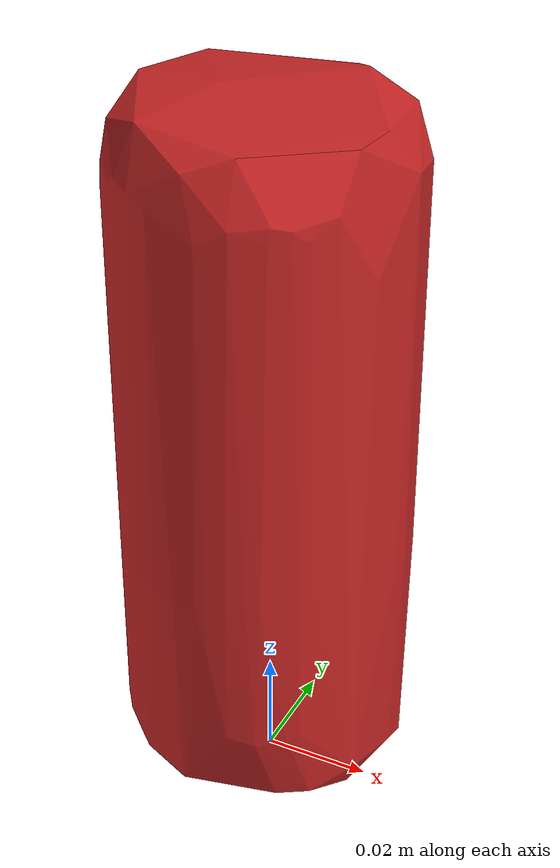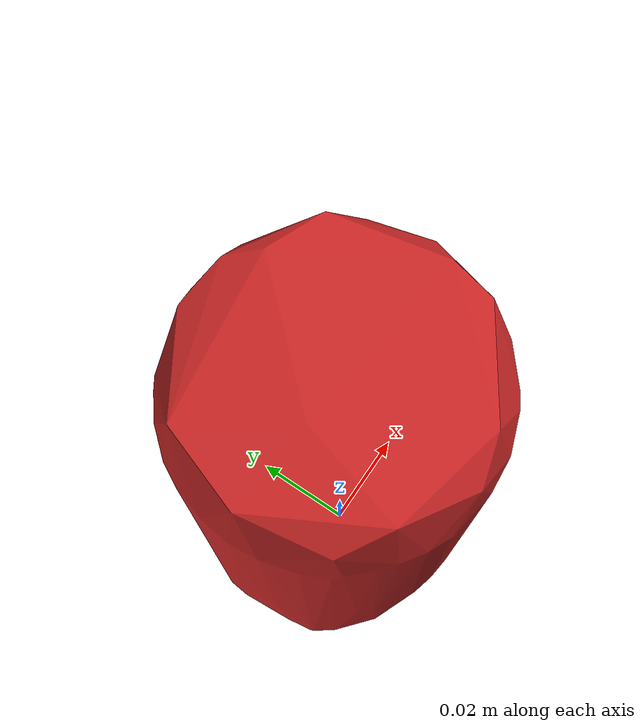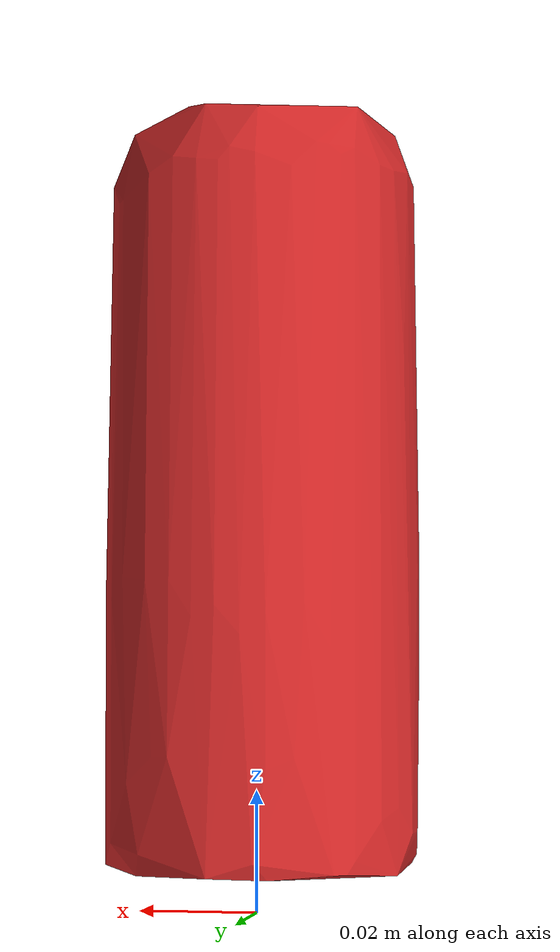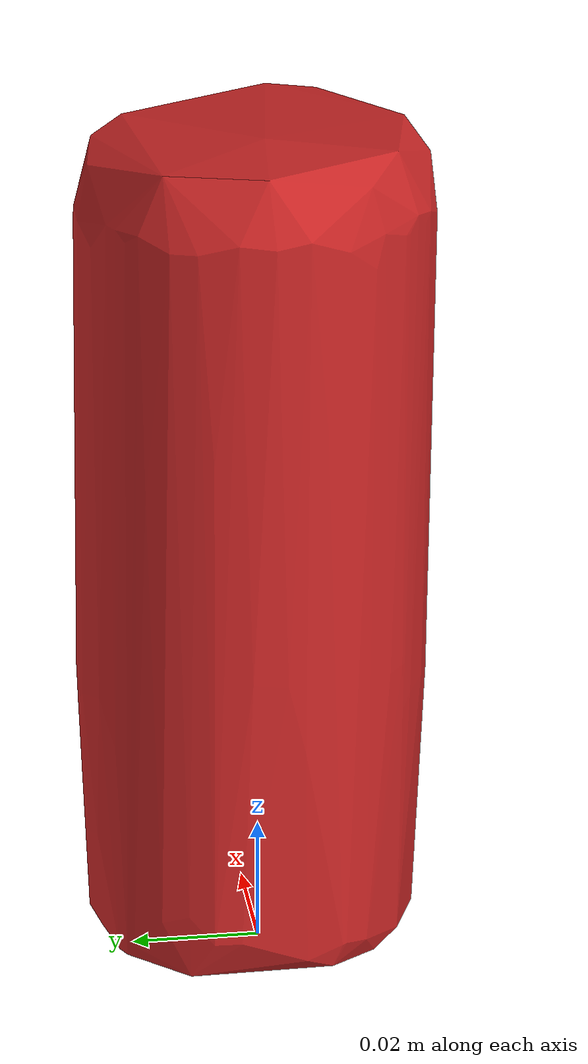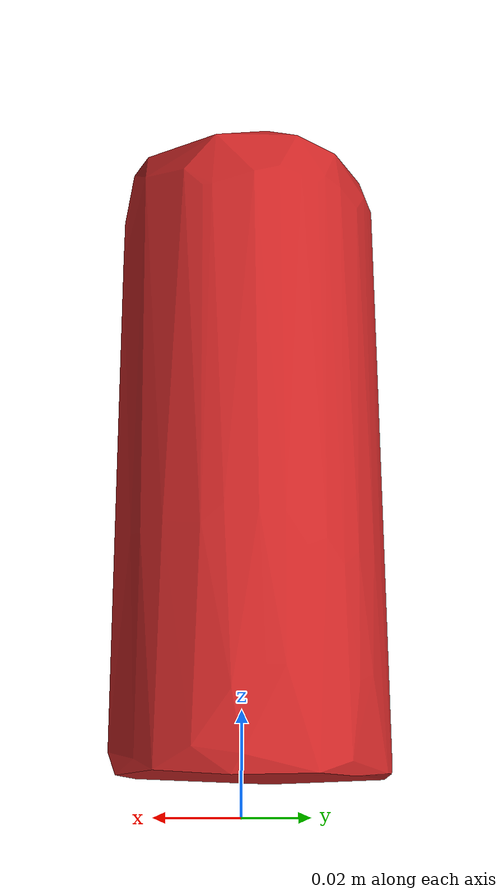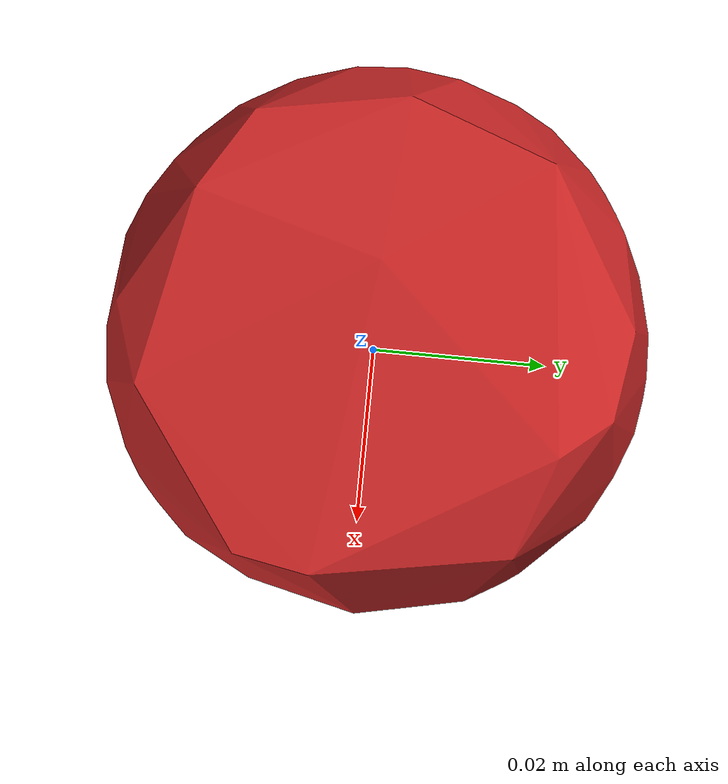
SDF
<?xml version='1.0'?>
<sdf version="1.4">
  <model name="red_bull">
    <static>false</static>
    <link name="link">
      <inertial>
        <pose>-0.0013892354890806442 0.0006233133166435512 0.06641107988945733 3.138145834431202 0.006412367514259514 -1.411111071437287</pose>
        <mass>0.033205811875116335</mass>
        <inertia>
          <ixx>5.137558547532297e-05</ixx>
          <ixy>1.303986701467976e-22</ixy>
          <ixz>-7.800371592083912e-21</ixz>
          <iyy>5.097988164369363e-05</iyy>
          <iyz>1.5913859211046028e-21</iyz>
          <izz>1.3829311967712618e-05</izz>
        </inertia>
      </inertial>
      <collision name="collision">
        <geometry>
          <mesh>
            <!-- Use a downsampled mesh for collisions -->
            <uri>model:///red_bull/red_bull_250_collision.obj</uri>
	        </mesh>
        </geometry>
        <surface>
      </surface>
      </collision>
      <visual name="visual">
        <geometry>
          <mesh>
            <uri>model:///red_bull/optimized_tsdf_texture_mapped_mesh.obj</uri>
	        </mesh>
        </geometry>
        <material>
          <script>
            <uri>model:///red_bull/red_bull.material</uri>
            <name>red_bull</name>
          </script>
        </material>
      </visual>
    </link>
  </model>
</sdf>
